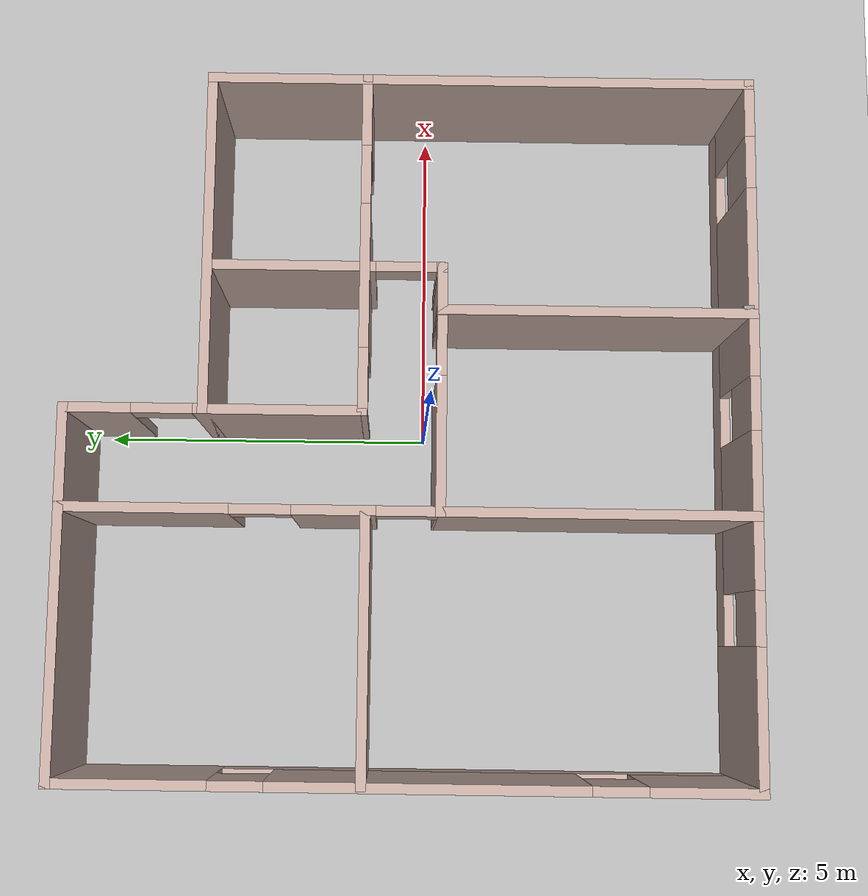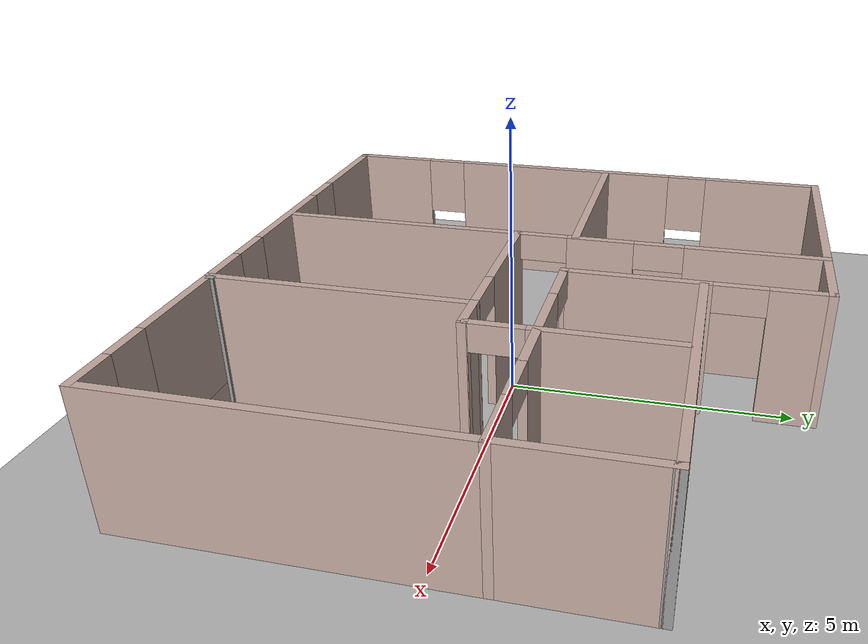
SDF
<sdf version="1.9">
 <world name="default">
  <gravity>0 0 -9.8</gravity>
  <magnetic_field>6e-06 2.3e-05 -4.2e-05</magnetic_field>
  <atmosphere type="adiabatic"/>
  <physics type="ode">
   <max_step_size>0.001</max_step_size>
   <real_time_factor>1</real_time_factor>
   <real_time_update_rate>1000</real_time_update_rate>
  </physics>
  <scene><ambient>0.4 0.4 0.4 1</ambient><background>0.7 0.7 0.7 1</background><shadows>true</shadows></scene>
  <model name="mY2building">
   <pose>-0.024 0.257931 0 0 0 -0.002822</pose>
   <link name="Wall_11">
    <collision name="Wall_11_Collision">
     <geometry><box><size>3.96965 0.15 2.5</size></box></geometry>
     <pose>0 0 1.25 0 -0 0</pose>
    </collision>
    <visual name="Wall_11_Visual">
     <pose>0 0 1.25 0 -0 0</pose>
     <geometry><box><size>3.96965 0.15 2.5</size></box></geometry>
     <material>
      <script><uri>file://media/materials/scripts/gazebo.material</uri><name>Gazebo/Grey</name></script>
      <ambient>0.760784 0.662745 0.627451 1</ambient>
     </material>
     <meta><layer>0</layer></meta>
    </visual>
    <pose>-3.272 0.614069 0 0 -0 0</pose>
    <inertial>
     <mass>1</mass>
     <inertia><ixx>1</ixx><ixy>0</ixy><ixz>0</ixz><iyy>1</iyy><iyz>0</iyz><izz>1</izz></inertia>
    </inertial>
   </link>
   <link name="Wall_15">
    <pose>-1.303 6.9e-05 0 0 0 -1.5708</pose>
    <visual name="Wall_15_Visual_0">
     <pose>-3.85911 0 1.25 0 -0 0</pose>
     <geometry><box><size>2.53178 0.15 2.5</size></box></geometry>
     <material>
      <script><uri>file://media/materials/scripts/gazebo.material</uri><name>Gazebo/Grey</name></script>
      <ambient>0.760784 0.662745 0.627451 1</ambient>
     </material>
     <meta><layer>0</layer></meta>
    </visual>
    <collision name="Wall_15_Collision_0">
     <geometry><box><size>2.53178 0.15 2.5</size></box></geometry>
     <pose>-3.85911 0 1.25 0 -0 0</pose>
    </collision>
    <visual name="Wall_15_Visual_1">
     <pose>-1.07921 0 1.25 0 -0 0</pose>
     <geometry><box><size>1.22802 0.15 2.5</size></box></geometry>
     <material>
      <script><uri>file://media/materials/scripts/gazebo.material</uri><name>Gazebo/Grey</name></script>
      <ambient>0.760784 0.662745 0.627451 1</ambient>
     </material>
     <meta><layer>0</layer></meta>
    </visual>
    <collision name="Wall_15_Collision_1">
     <geometry><box><size>1.22802 0.15 2.5</size></box></geometry>
     <pose>-1.07921 0 1.25 0 -0 0</pose>
    </collision>
    <visual name="Wall_15_Visual_2">
     <pose>2.7799 0 1.25 0 -0 0</pose>
     <geometry><box><size>4.6902 0.15 2.5</size></box></geometry>
     <material>
      <script><uri>file://media/materials/scripts/gazebo.material</uri><name>Gazebo/Grey</name></script>
      <ambient>0.760784 0.662745 0.627451 1</ambient>
     </material>
     <meta><layer>0</layer></meta>
    </visual>
    <collision name="Wall_15_Collision_2">
     <geometry><box><size>4.6902 0.15 2.5</size></box></geometry>
     <pose>2.7799 0 1.25 0 -0 0</pose>
    </collision>
    <visual name="Wall_15_Visual_3">
     <pose>-2.14322 0 2.25 0 -0 0</pose>
     <geometry><box><size>0.9 0.15 0.5</size></box></geometry>
     <material>
      <script><uri>file://media/materials/scripts/gazebo.material</uri><name>Gazebo/Grey</name></script>
      <ambient>0.760784 0.662745 0.627451 1</ambient>
     </material>
     <meta><layer>0</layer></meta>
    </visual>
    <collision name="Wall_15_Collision_3">
     <geometry><box><size>0.9 0.15 0.5</size></box></geometry>
     <pose>-2.14322 0 2.25 0 -0 0</pose>
    </collision>
    <visual name="Wall_15_Visual_4">
     <pose>-0.015205 0 2.25 0 -0 0</pose>
     <geometry><box><size>0.9 0.15 0.5</size></box></geometry>
     <material>
      <script><uri>file://media/materials/scripts/gazebo.material</uri><name>Gazebo/Grey</name></script>
      <ambient>0.760784 0.662745 0.627451 1</ambient>
     </material>
     <meta><layer>0</layer></meta>
    </visual>
    <collision name="Wall_15_Collision_4">
     <geometry><box><size>0.9 0.15 0.5</size></box></geometry>
     <pose>-0.015205 0 2.25 0 -0 0</pose>
    </collision>
    <inertial>
     <mass>1</mass>
     <inertia><ixx>1</ixx><ixy>0</ixy><ixz>0</ixz><iyy>1</iyy><iyz>0</iyz><izz>1</izz></inertia>
    </inertial>
   </link>
   <link name="Wall_17">
    <pose>0.506 -0.472931 0 0 -0 0</pose>
    <visual name="Wall_17_Visual_0">
     <pose>-0.845468 0 1.25 0 -0 0</pose>
     <geometry><box><size>2.07706 0.15 2.5</size></box></geometry>
     <material>
      <script><uri>file://media/materials/scripts/gazebo.material</uri><name>Gazebo/Grey</name></script>
      <ambient>0.760784 0.662745 0.627451 1</ambient>
     </material>
     <meta><layer>0</layer></meta>
    </visual>
    <collision name="Wall_17_Collision_0">
     <geometry><box><size>2.07706 0.15 2.5</size></box></geometry>
     <pose>-0.845468 0 1.25 0 -0 0</pose>
    </collision>
    <visual name="Wall_17_Visual_1">
     <pose>1.48853 0 1.25 0 -0 0</pose>
     <geometry><box><size>0.790936 0.15 2.5</size></box></geometry>
     <material>
      <script><uri>file://media/materials/scripts/gazebo.material</uri><name>Gazebo/Grey</name></script>
      <ambient>0.760784 0.662745 0.627451 1</ambient>
     </material>
     <meta><layer>0</layer></meta>
    </visual>
    <collision name="Wall_17_Collision_1">
     <geometry><box><size>0.790936 0.15 2.5</size></box></geometry>
     <pose>1.48853 0 1.25 0 -0 0</pose>
    </collision>
    <visual name="Wall_17_Visual_2">
     <pose>0.643064 0 2.25 0 -0 0</pose>
     <geometry><box><size>0.9 0.15 0.5</size></box></geometry>
     <material>
      <script><uri>file://media/materials/scripts/gazebo.material</uri><name>Gazebo/Grey</name></script>
      <ambient>0.760784 0.662745 0.627451 1</ambient>
     </material>
     <meta><layer>0</layer></meta>
    </visual>
    <collision name="Wall_17_Collision_2">
     <geometry><box><size>0.9 0.15 0.5</size></box></geometry>
     <pose>0.643064 0 2.25 0 -0 0</pose>
    </collision>
    <inertial>
     <mass>1</mass>
     <inertia><ixx>1</ixx><ixy>0</ixy><ixz>0</ixz><iyy>1</iyy><iyz>0</iyz><izz>1</izz></inertia>
    </inertial>
   </link>
   <link name="Wall_20">
    <pose>2.315 1.20857 0 0 0 -1.5708</pose>
    <visual name="Wall_20_Visual_0">
     <pose>-0.533203 0 1.25 0 -0 0</pose>
     <geometry><box><size>2.44659 0.15 2.5</size></box></geometry>
     <material>
      <script><uri>file://media/materials/scripts/gazebo.material</uri><name>Gazebo/Grey</name></script>
      <ambient>0.760784 0.662745 0.627451 1</ambient>
     </material>
     <meta><layer>0</layer></meta>
    </visual>
    <collision name="Wall_20_Collision_0">
     <geometry><box><size>2.44659 0.15 2.5</size></box></geometry>
     <pose>-0.533203 0 1.25 0 -0 0</pose>
    </collision>
    <visual name="Wall_20_Visual_1">
     <pose>1.6733 0 1.25 0 -0 0</pose>
     <geometry><box><size>0.166406 0.15 2.5</size></box></geometry>
     <material>
      <script><uri>file://media/materials/scripts/gazebo.material</uri><name>Gazebo/Grey</name></script>
      <ambient>0.760784 0.662745 0.627451 1</ambient>
     </material>
     <meta><layer>0</layer></meta>
    </visual>
    <collision name="Wall_20_Collision_1">
     <geometry><box><size>0.166406 0.15 2.5</size></box></geometry>
     <pose>1.6733 0 1.25 0 -0 0</pose>
    </collision>
    <visual name="Wall_20_Visual_2">
     <pose>1.14009 0 2.25 0 -0 0</pose>
     <geometry><box><size>0.9 0.15 0.5</size></box></geometry>
     <material>
      <script><uri>file://media/materials/scripts/gazebo.material</uri><name>Gazebo/Grey</name></script>
      <ambient>0.760784 0.662745 0.627451 1</ambient>
     </material>
     <meta><layer>0</layer></meta>
    </visual>
    <collision name="Wall_20_Collision_2">
     <geometry><box><size>0.9 0.15 0.5</size></box></geometry>
     <pose>1.14009 0 2.25 0 -0 0</pose>
    </collision>
    <inertial>
     <mass>1</mass>
     <inertia><ixx>1</ixx><ixy>0</ixy><ixz>0</ixz><iyy>1</iyy><iyz>0</iyz><izz>1</izz></inertia>
    </inertial>
   </link>
   <link name="Wall_22">
    <collision name="Wall_22_Collision">
     <geometry><box><size>0.15 0.15 2.5</size></box></geometry>
     <pose>0 0 1.25 0 -0 0</pose>
    </collision>
    <visual name="Wall_22_Visual">
     <pose>0 0 1.25 0 -0 0</pose>
     <geometry><box><size>0.15 0.15 2.5</size></box></geometry>
     <material>
      <script><uri>file://media/materials/scripts/gazebo.material</uri><name>Gazebo/Grey</name></script>
      <ambient>1 1 1 1</ambient>
     </material>
     <meta><layer>0</layer></meta>
    </visual>
    <pose>1.727 -4.98493 0 0 -0 0</pose>
    <inertial>
     <mass>1</mass>
     <inertia><ixx>1</ixx><ixy>0</ixy><ixz>0</ixz><iyy>1</iyy><iyz>0</iyz><izz>1</izz></inertia>
    </inertial>
   </link>
   <link name="Wall_28">
    <pose>2.6795 0.683069 0 0 -0 0</pose>
    <visual name="Wall_28_Visual_0">
     <pose>-2.54317 0 1.25 0 -0 0</pose>
     <geometry><box><size>0.11466 0.15 2.5</size></box></geometry>
     <material>
      <script><uri>file://media/materials/scripts/gazebo.material</uri><name>Gazebo/Grey</name></script>
      <ambient>0.760784 0.662745 0.627451 1</ambient>
     </material>
     <meta><layer>0</layer></meta>
    </visual>
    <collision name="Wall_28_Collision_0">
     <geometry><box><size>0.11466 0.15 2.5</size></box></geometry>
     <pose>-2.54317 0 1.25 0 -0 0</pose>
    </collision>
    <visual name="Wall_28_Visual_1">
     <pose>-0.493028 0 1.25 0 -0 0</pose>
     <geometry><box><size>2.18562 0.15 2.5</size></box></geometry>
     <material>
      <script><uri>file://media/materials/scripts/gazebo.material</uri><name>Gazebo/Grey</name></script>
      <ambient>0.760784 0.662745 0.627451 1</ambient>
     </material>
     <meta><layer>0</layer></meta>
    </visual>
    <collision name="Wall_28_Collision_1">
     <geometry><box><size>2.18562 0.15 2.5</size></box></geometry>
     <pose>-0.493028 0 1.25 0 -0 0</pose>
    </collision>
    <visual name="Wall_28_Visual_2">
     <pose>2.05014 0 1.25 0 -0 0</pose>
     <geometry><box><size>1.10072 0.15 2.5</size></box></geometry>
     <material>
      <script><uri>file://media/materials/scripts/gazebo.material</uri><name>Gazebo/Grey</name></script>
      <ambient>0.760784 0.662745 0.627451 1</ambient>
     </material>
     <meta><layer>0</layer></meta>
    </visual>
    <collision name="Wall_28_Collision_2">
     <geometry><box><size>1.10072 0.15 2.5</size></box></geometry>
     <pose>2.05014 0 1.25 0 -0 0</pose>
    </collision>
    <visual name="Wall_28_Visual_3">
     <pose>-2.03584 0 2.25 0 -0 0</pose>
     <geometry><box><size>0.9 0.15 0.5</size></box></geometry>
     <material>
      <script><uri>file://media/materials/scripts/gazebo.material</uri><name>Gazebo/Grey</name></script>
      <ambient>0.760784 0.662745 0.627451 1</ambient>
     </material>
     <meta><layer>0</layer></meta>
    </visual>
    <collision name="Wall_28_Collision_3">
     <geometry><box><size>0.9 0.15 0.5</size></box></geometry>
     <pose>-2.03584 0 2.25 0 -0 0</pose>
    </collision>
    <visual name="Wall_28_Visual_4">
     <pose>1.04978 0 2.25 0 -0 0</pose>
     <geometry><box><size>0.9 0.15 0.5</size></box></geometry>
     <material>
      <script><uri>file://media/materials/scripts/gazebo.material</uri><name>Gazebo/Grey</name></script>
      <ambient>0.760784 0.662745 0.627451 1</ambient>
     </material>
     <meta><layer>0</layer></meta>
    </visual>
    <collision name="Wall_28_Collision_4">
     <geometry><box><size>0.9 0.15 0.5</size></box></geometry>
     <pose>1.04978 0 2.25 0 -0 0</pose>
    </collision>
    <inertial>
     <mass>1</mass>
     <inertia><ixx>1</ixx><ixy>0</ixy><ixz>0</ixz><iyy>1</iyy><iyz>0</iyz><izz>1</izz></inertia>
    </inertial>
   </link>
   <link name="Wall_30">
    <collision name="Wall_30_Collision">
     <geometry><box><size>4.72728 0.15 2.5</size></box></geometry>
     <pose>0 0 1.25 0 -0 0</pose>
    </collision>
    <visual name="Wall_30_Visual">
     <pose>0 0 1.25 0 -0 0</pose>
     <geometry><box><size>4.72728 0.15 2.5</size></box></geometry>
     <material>
      <script><uri>file://media/materials/scripts/gazebo.material</uri><name>Gazebo/Grey</name></script>
      <ambient>0.760784 0.662745 0.627451 1</ambient>
     </material>
     <meta><layer>0</layer></meta>
    </visual>
    <pose>1.681 -2.76143 0 0 0 -1.5708</pose>
    <inertial>
     <mass>1</mass>
     <inertia><ixx>1</ixx><ixy>0</ixy><ixz>0</ixz><iyy>1</iyy><iyz>0</iyz><izz>1</izz></inertia>
    </inertial>
   </link>
   <link name="Wall_4">
    <pose>-5.205 6.9e-05 0 0 0 -1.5708</pose>
    <visual name="Wall_4_Visual_0">
     <pose>-3.95381 0 1.25 0 -0 0</pose>
     <geometry><box><size>2.34238 0.15 2.5</size></box></geometry>
     <material>
      <script><uri>file://media/materials/scripts/gazebo.material</uri><name>Gazebo/Grey</name></script>
      <ambient>0.760784 0.662745 0.627451 1</ambient>
     </material>
     <meta><layer>0</layer></meta>
    </visual>
    <collision name="Wall_4_Collision_0">
     <geometry><box><size>2.34238 0.15 2.5</size></box></geometry>
     <pose>-3.95381 0 1.25 0 -0 0</pose>
    </collision>
    <visual name="Wall_4_Visual_1">
     <pose>1.17119 0 0.25 0 -0 0</pose>
     <geometry><box><size>7.90762 0.15 0.5</size></box></geometry>
     <material>
      <script><uri>file://media/materials/scripts/gazebo.material</uri><name>Gazebo/Grey</name></script>
      <ambient>0.760784 0.662745 0.627451 1</ambient>
     </material>
     <meta><layer>0</layer></meta>
    </visual>
    <collision name="Wall_4_Collision_1">
     <geometry><box><size>7.90762 0.15 0.5</size></box></geometry>
     <pose>1.17119 0 0.25 0 -0 0</pose>
    </collision>
    <visual name="Wall_4_Visual_2">
     <pose>0.330597 0 1.5 0 -0 0</pose>
     <geometry><box><size>4.62644 0.15 2</size></box></geometry>
     <material>
      <script><uri>file://media/materials/scripts/gazebo.material</uri><name>Gazebo/Grey</name></script>
      <ambient>0.760784 0.662745 0.627451 1</ambient>
     </material>
     <meta><layer>0</layer></meta>
    </visual>
    <collision name="Wall_4_Collision_2">
     <geometry><box><size>4.62644 0.15 2</size></box></geometry>
     <pose>0.330597 0 1.5 0 -0 0</pose>
    </collision>
    <visual name="Wall_4_Visual_3">
     <pose>4.28441 0 1.5 0 -0 0</pose>
     <geometry><box><size>1.68118 0.15 2</size></box></geometry>
     <material>
      <script><uri>file://media/materials/scripts/gazebo.material</uri><name>Gazebo/Grey</name></script>
      <ambient>0.760784 0.662745 0.627451 1</ambient>
     </material>
     <meta><layer>0</layer></meta>
    </visual>
    <collision name="Wall_4_Collision_3">
     <geometry><box><size>1.68118 0.15 2</size></box></geometry>
     <pose>4.28441 0 1.5 0 -0 0</pose>
    </collision>
    <visual name="Wall_4_Visual_4">
     <pose>-2.38262 0 1.9 0 -0 0</pose>
     <geometry><box><size>0.8 0.15 1.2</size></box></geometry>
     <material>
      <script><uri>file://media/materials/scripts/gazebo.material</uri><name>Gazebo/Grey</name></script>
      <ambient>0.760784 0.662745 0.627451 1</ambient>
     </material>
     <meta><layer>0</layer></meta>
    </visual>
    <collision name="Wall_4_Collision_4">
     <geometry><box><size>0.8 0.15 1.2</size></box></geometry>
     <pose>-2.38262 0 1.9 0 -0 0</pose>
    </collision>
    <visual name="Wall_4_Visual_5">
     <pose>3.04382 0 1.9 0 -0 0</pose>
     <geometry><box><size>0.8 0.15 1.2</size></box></geometry>
     <material>
      <script><uri>file://media/materials/scripts/gazebo.material</uri><name>Gazebo/Grey</name></script>
      <ambient>0.760784 0.662745 0.627451 1</ambient>
     </material>
     <meta><layer>0</layer></meta>
    </visual>
    <collision name="Wall_4_Collision_5">
     <geometry><box><size>0.8 0.15 1.2</size></box></geometry>
     <pose>3.04382 0 1.9 0 -0 0</pose>
    </collision>
    <inertial>
     <mass>1</mass>
     <inertia><ixx>1</ixx><ixy>0</ixy><ixz>0</ixz><iyy>1</iyy><iyz>0</iyz><izz>1</izz></inertia>
    </inertial>
   </link>
   <link name="Wall_5">
    <pose>0 -5.04993 0 0 -0 0</pose>
    <visual name="Wall_5_Visual_0">
     <pose>-4.2205 0 1.25 0 -0 0</pose>
     <geometry><box><size>2.11867 0.15 2.5</size></box></geometry>
     <material>
      <script><uri>file://media/materials/scripts/gazebo.material</uri><name>Gazebo/Grey</name></script>
      <ambient>0.760784 0.662745 0.627451 1</ambient>
     </material>
     <meta><layer>0</layer></meta>
    </visual>
    <collision name="Wall_5_Collision_0">
     <geometry><box><size>2.11867 0.15 2.5</size></box></geometry>
     <pose>-4.2205 0 1.25 0 -0 0</pose>
    </collision>
    <visual name="Wall_5_Visual_1">
     <pose>1.05934 0 0.25 0 -0 0</pose>
     <geometry><box><size>8.441 0.15 0.5</size></box></geometry>
     <material>
      <script><uri>file://media/materials/scripts/gazebo.material</uri><name>Gazebo/Grey</name></script>
      <ambient>0.760784 0.662745 0.627451 1</ambient>
     </material>
     <meta><layer>0</layer></meta>
    </visual>
    <collision name="Wall_5_Collision_1">
     <geometry><box><size>8.441 0.15 0.5</size></box></geometry>
     <pose>1.05934 0 0.25 0 -0 0</pose>
    </collision>
    <visual name="Wall_5_Visual_2">
     <pose>-1.20505 0 1.5 0 -0 0</pose>
     <geometry><box><size>2.31222 0.15 2</size></box></geometry>
     <material>
      <script><uri>file://media/materials/scripts/gazebo.material</uri><name>Gazebo/Grey</name></script>
      <ambient>0.760784 0.662745 0.627451 1</ambient>
     </material>
     <meta><layer>0</layer></meta>
    </visual>
    <collision name="Wall_5_Collision_2">
     <geometry><box><size>2.31222 0.15 2</size></box></geometry>
     <pose>-1.20505 0 1.5 0 -0 0</pose>
    </collision>
    <visual name="Wall_5_Visual_3">
     <pose>2.17317 0 1.5 0 -0 0</pose>
     <geometry><box><size>2.84423 0.15 2</size></box></geometry>
     <material>
      <script><uri>file://media/materials/scripts/gazebo.material</uri><name>Gazebo/Grey</name></script>
      <ambient>0.760784 0.662745 0.627451 1</ambient>
     </material>
     <meta><layer>0</layer></meta>
    </visual>
    <collision name="Wall_5_Collision_3">
     <geometry><box><size>2.84423 0.15 2</size></box></geometry>
     <pose>2.17317 0 1.5 0 -0 0</pose>
    </collision>
    <visual name="Wall_5_Visual_4">
     <pose>4.83756 0 1.5 0 -0 0</pose>
     <geometry><box><size>0.884552 0.15 2</size></box></geometry>
     <material>
      <script><uri>file://media/materials/scripts/gazebo.material</uri><name>Gazebo/Grey</name></script>
      <ambient>0.760784 0.662745 0.627451 1</ambient>
     </material>
     <meta><layer>0</layer></meta>
    </visual>
    <collision name="Wall_5_Collision_4">
     <geometry><box><size>0.884552 0.15 2</size></box></geometry>
     <pose>4.83756 0 1.5 0 -0 0</pose>
    </collision>
    <visual name="Wall_5_Visual_5">
     <pose>-2.76117 0 1.9 0 -0 0</pose>
     <geometry><box><size>0.8 0.15 1.2</size></box></geometry>
     <material>
      <script><uri>file://media/materials/scripts/gazebo.material</uri><name>Gazebo/Grey</name></script>
      <ambient>0.760784 0.662745 0.627451 1</ambient>
     </material>
     <meta><layer>0</layer></meta>
    </visual>
    <collision name="Wall_5_Collision_5">
     <geometry><box><size>0.8 0.15 1.2</size></box></geometry>
     <pose>-2.76117 0 1.9 0 -0 0</pose>
    </collision>
    <visual name="Wall_5_Visual_6">
     <pose>0.351058 0 1.9 0 -0 0</pose>
     <geometry><box><size>0.8 0.15 1.2</size></box></geometry>
     <material>
      <script><uri>file://media/materials/scripts/gazebo.material</uri><name>Gazebo/Grey</name></script>
      <ambient>0.760784 0.662745 0.627451 1</ambient>
     </material>
     <meta><layer>0</layer></meta>
    </visual>
    <collision name="Wall_5_Collision_6">
     <geometry><box><size>0.8 0.15 1.2</size></box></geometry>
     <pose>0.351058 0 1.9 0 -0 0</pose>
    </collision>
    <visual name="Wall_5_Visual_7">
     <pose>3.99528 0 1.9 0 -0 0</pose>
     <geometry><box><size>0.8 0.15 1.2</size></box></geometry>
     <material>
      <script><uri>file://media/materials/scripts/gazebo.material</uri><name>Gazebo/Grey</name></script>
      <ambient>0.760784 0.662745 0.627451 1</ambient>
     </material>
     <meta><layer>0</layer></meta>
    </visual>
    <collision name="Wall_5_Collision_7">
     <geometry><box><size>0.8 0.15 1.2</size></box></geometry>
     <pose>3.99528 0 1.9 0 -0 0</pose>
    </collision>
    <inertial>
     <mass>1</mass>
     <inertia><ixx>1</ixx><ixy>0</ixy><ixz>0</ixz><iyy>1</iyy><iyz>0</iyz><izz>1</izz></inertia>
    </inertial>
   </link>
   <link name="Wall_56">
    <collision name="Wall_56_Collision">
     <geometry><box><size>5.204 0.15 2.5</size></box></geometry>
     <pose>0 0 1.25 0 -0 0</pose>
    </collision>
    <visual name="Wall_56_Visual">
     <pose>0 0 1.25 0 -0 0</pose>
     <geometry><box><size>5.204 0.15 2.5</size></box></geometry>
     <material>
      <script><uri>file://media/materials/scripts/gazebo.material</uri><name>Gazebo/Grey</name></script>
      <ambient>0.760784 0.662745 0.627451 1</ambient>
     </material>
     <meta><layer>0</layer></meta>
    </visual>
    <pose>2.678 3.01607 0 0 -0 0</pose>
    <inertial>
     <mass>1</mass>
     <inertia><ixx>1</ixx><ixy>0</ixy><ixz>0</ixz><iyy>1</iyy><iyz>0</iyz><izz>1</izz></inertia>
    </inertial>
   </link>
   <link name="Wall_57">
    <collision name="Wall_57_Collision">
     <geometry><box><size>0.176 0.15 2.5</size></box></geometry>
     <pose>0 0 1.25 0 -0 0</pose>
    </collision>
    <visual name="Wall_57_Visual">
     <pose>0 0 1.25 0 -0 0</pose>
     <geometry><box><size>0.176 0.15 2.5</size></box></geometry>
     <material>
      <script><uri>file://media/materials/scripts/gazebo.material</uri><name>Gazebo/Grey</name></script>
      <ambient>1 1 1 1</ambient>
     </material>
     <meta><layer>0</layer></meta>
    </visual>
    <pose>5.205 3.00307 0 0 0 -1.5708</pose>
    <inertial>
     <mass>1</mass>
     <inertia><ixx>1</ixx><ixy>0</ixy><ixz>0</ixz><iyy>1</iyy><iyz>0</iyz><izz>1</izz></inertia>
    </inertial>
   </link>
   <link name="Wall_6">
    <collision name="Wall_6_Collision">
     <geometry><box><size>8.216 0.15 2.5</size></box></geometry>
     <pose>0 0 1.25 0 -0 0</pose>
    </collision>
    <visual name="Wall_6_Visual">
     <pose>0 0 1.25 0 -0 0</pose>
     <geometry><box><size>8.216 0.15 2.5</size></box></geometry>
     <material>
      <script><uri>file://media/materials/scripts/gazebo.material</uri><name>Gazebo/Grey</name></script>
      <ambient>0.760784 0.662745 0.627451 1</ambient>
     </material>
     <meta><layer>0</layer></meta>
    </visual>
    <pose>5.205 -1.01693 0 0 -0 1.5708</pose>
    <inertial>
     <mass>1</mass>
     <inertia><ixx>1</ixx><ixy>0</ixy><ixz>0</ixz><iyy>1</iyy><iyz>0</iyz><izz>1</izz></inertia>
    </inertial>
   </link>
   <link name="Wall_8">
    <pose>0.151 2.91407 0 0 -0 1.5708</pose>
    <visual name="Wall_8_Visual_0">
     <pose>-0.984385 0 1.25 0 -0 0</pose>
     <geometry><box><size>2.45323 0.15 2.5</size></box></geometry>
     <material>
      <script><uri>file://media/materials/scripts/gazebo.material</uri><name>Gazebo/Grey</name></script>
      <ambient>0.760784 0.662745 0.627451 1</ambient>
     </material>
     <meta><layer>0</layer></meta>
    </visual>
    <collision name="Wall_8_Collision_0">
     <geometry><box><size>2.45323 0.15 2.5</size></box></geometry>
     <pose>-0.984385 0 1.25 0 -0 0</pose>
    </collision>
    <visual name="Wall_8_Visual_1">
     <pose>1.67662 0 1.25 0 -0 0</pose>
     <geometry><box><size>1.06877 0.15 2.5</size></box></geometry>
     <material>
      <script><uri>file://media/materials/scripts/gazebo.material</uri><name>Gazebo/Grey</name></script>
      <ambient>0.760784 0.662745 0.627451 1</ambient>
     </material>
     <meta><layer>0</layer></meta>
    </visual>
    <collision name="Wall_8_Collision_1">
     <geometry><box><size>1.06877 0.15 2.5</size></box></geometry>
     <pose>1.67662 0 1.25 0 -0 0</pose>
    </collision>
    <visual name="Wall_8_Visual_2">
     <pose>0.692232 0 2.25 0 -0 0</pose>
     <geometry><box><size>0.9 0.15 0.5</size></box></geometry>
     <material>
      <script><uri>file://media/materials/scripts/gazebo.material</uri><name>Gazebo/Grey</name></script>
      <ambient>0.760784 0.662745 0.627451 1</ambient>
     </material>
     <meta><layer>0</layer></meta>
    </visual>
    <collision name="Wall_8_Collision_2">
     <geometry><box><size>0.9 0.15 0.5</size></box></geometry>
     <pose>0.692232 0 2.25 0 -0 0</pose>
    </collision>
    <inertial>
     <mass>1</mass>
     <inertia><ixx>1</ixx><ixy>0</ixy><ixz>0</ixz><iyy>1</iyy><iyz>0</iyz><izz>1</izz></inertia>
    </inertial>
   </link>
   <link name="Wall_9">
    <collision name="Wall_9_Collision">
     <geometry><box><size>5.506 0.15 2.5</size></box></geometry>
     <pose>0 0 1.25 0 -0 0</pose>
    </collision>
    <visual name="Wall_9_Visual">
     <pose>0 0 1.25 0 -0 0</pose>
     <geometry><box><size>5.506 0.15 2.5</size></box></geometry>
     <material>
      <script><uri>file://media/materials/scripts/gazebo.material</uri><name>Gazebo/Grey</name></script>
      <ambient>0.760784 0.662745 0.627451 1</ambient>
     </material>
     <meta><layer>0</layer></meta>
    </visual>
    <pose>-2.527 5.05007 0 0 -0 3.14159</pose>
    <inertial>
     <mass>1</mass>
     <inertia><ixx>1</ixx><ixy>0</ixy><ixz>0</ixz><iyy>1</iyy><iyz>0</iyz><izz>1</izz></inertia>
    </inertial>
   </link>
   <static>true</static>
  </model>
  <model name="ground_plane">
   <static>true</static>
   <link name="link">
    <collision name="collision">
     <geometry><plane><normal>0 0 1</normal><size>100 100</size></plane></geometry>
     <surface><friction><ode><mu>100</mu><mu2>50</mu2></ode></friction></surface>
    </collision>
    <visual name="visual">
     <cast_shadows>false</cast_shadows>
     <geometry><plane><normal>0 0 1</normal><size>100 100</size></plane></geometry>
     <material>
      <ambient>0.3 0.3 0.3 1</ambient>
      <diffuse>0.7 0.7 0.7 1</diffuse>
      <specular>0.01 0.01 0.01 1</specular>
     </material>
    </visual>
    <inertial>
     <mass>1</mass>
     <inertia><ixx>1</ixx><ixy>0</ixy><ixz>0</ixz><iyy>1</iyy><iyz>0</iyz><izz>1</izz></inertia>
    </inertial>
   </link>
   <pose>-2.0085 -3.75221 0 0 -0 0</pose>
  </model>
  <light name="sun" type="directional">
   <pose>-2.96895 -1.28245 10 0 -0 0</pose>
   <intensity>1</intensity>
   <direction>-0.5 0.1 -0.9</direction>
   <diffuse>0.8 0.8 0.8 1</diffuse>
   <specular>0.2 0.2 0.2 1</specular>
   <attenuation>
    <range>1000</range>
    <linear>0.01</linear>
    <constant>0.90000000000000002</constant>
    <quadratic>0.001</quadratic>
   </attenuation>
   <spot><inner_angle>0</inner_angle><outer_angle>0</outer_angle><falloff>0</falloff></spot>
  </light>
 </world>
</sdf>
